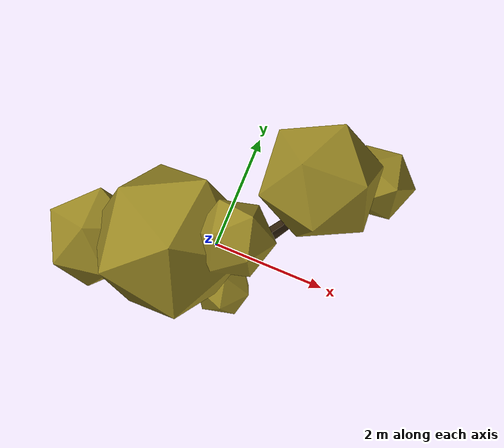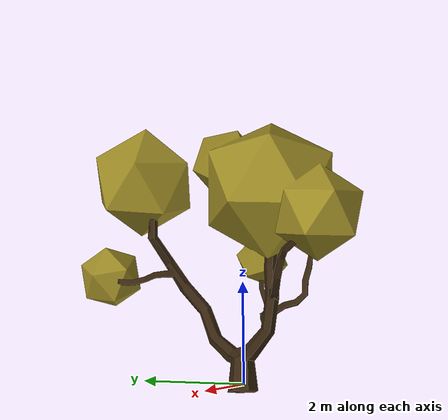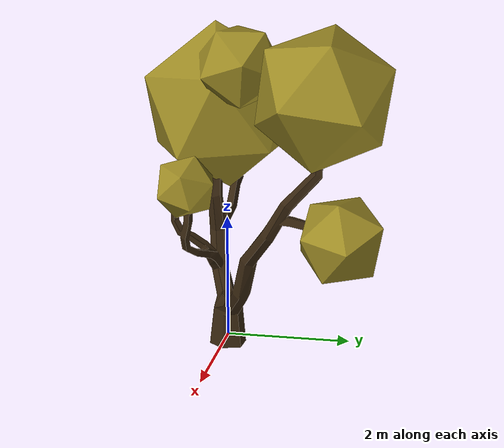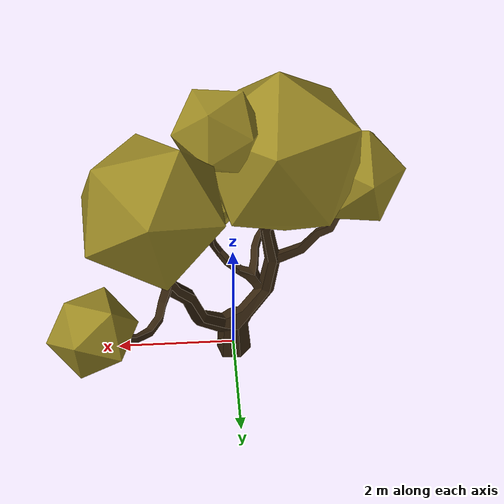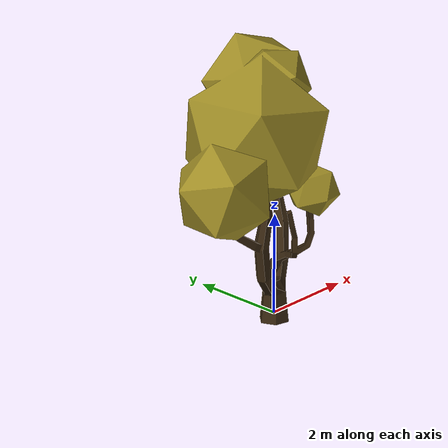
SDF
<?xml version="1.0"?>
<sdf version="1.6">
  <model name="low_poly_tree_dark">
    <static>true</static>
    <link name="link">
      <pose>0 0 0 1.5708 0 0</pose>
      <collision name="collision">
        <geometry>
          <mesh>
            <uri>model://low_poly_tree_dark/meshes/low_poly_tree_dark.dae</uri>
            <scale>200 200 200</scale>
          </mesh>
        </geometry>
      </collision>

      <visual name="visual">
        <geometry>
          <mesh>
            <uri>model://low_poly_tree_dark/meshes/low_poly_tree_dark.dae</uri>
            <scale>200 200 200</scale>
          </mesh>
        </geometry>
      </visual>
    </link>
  </model>
</sdf>
